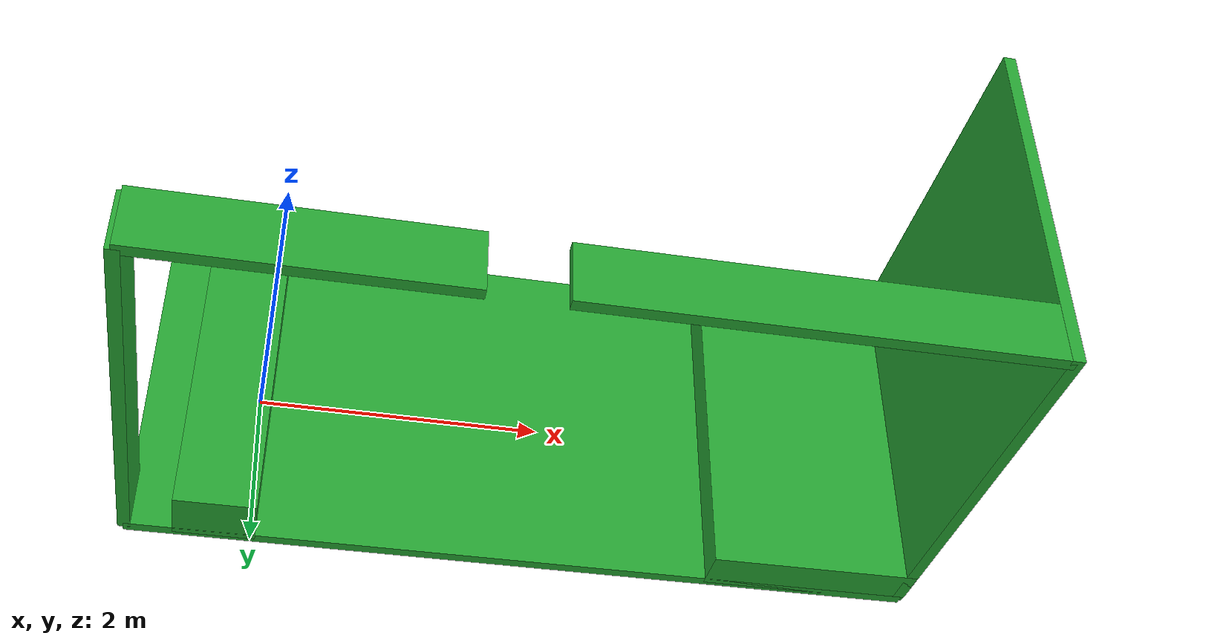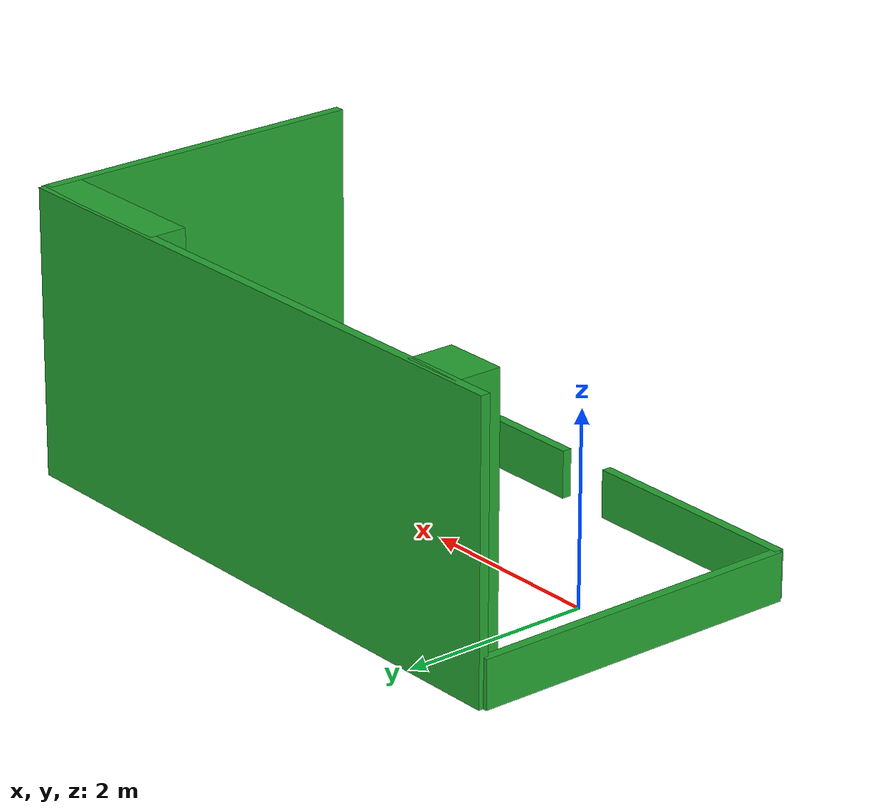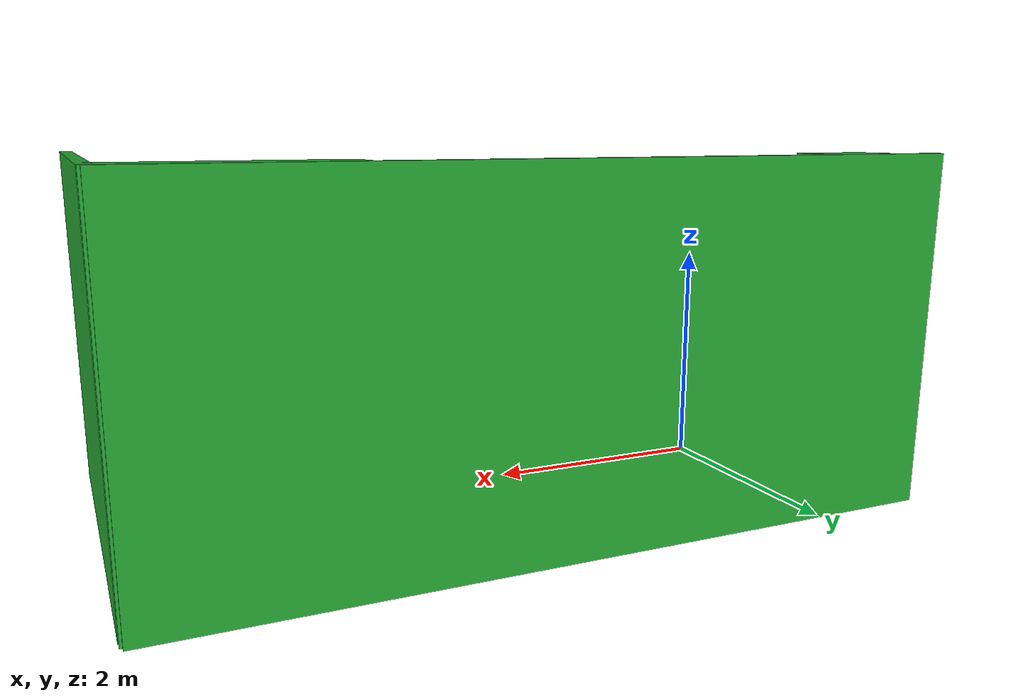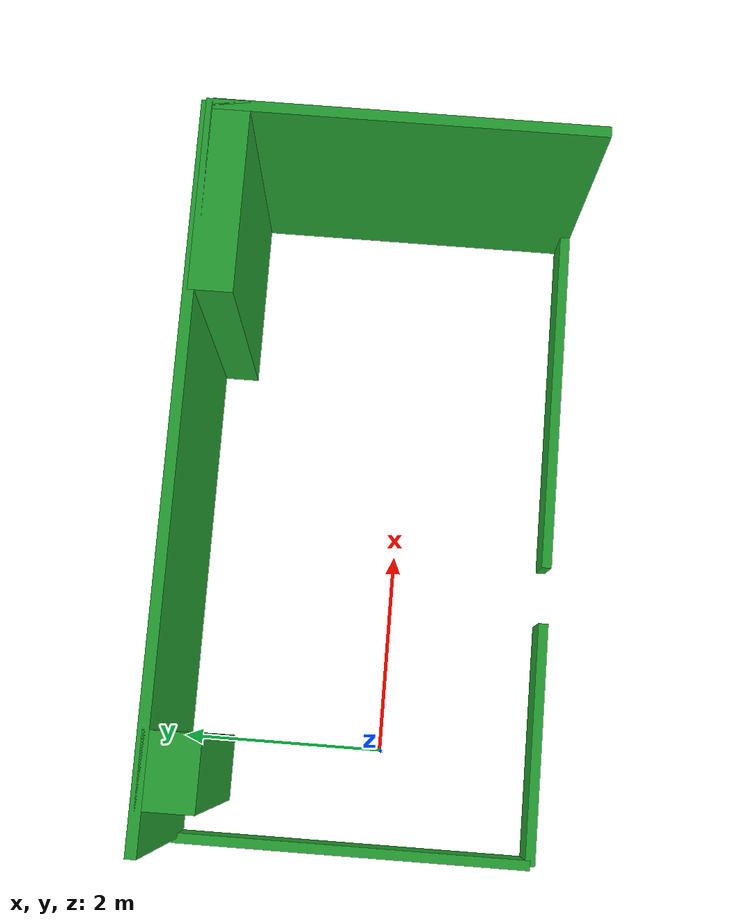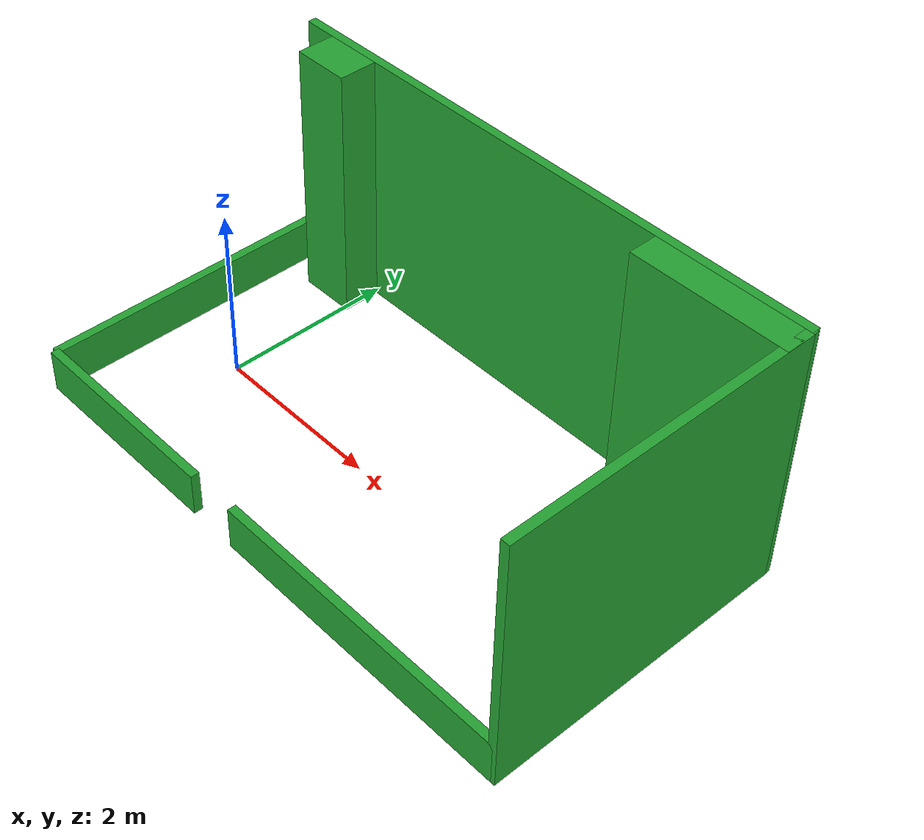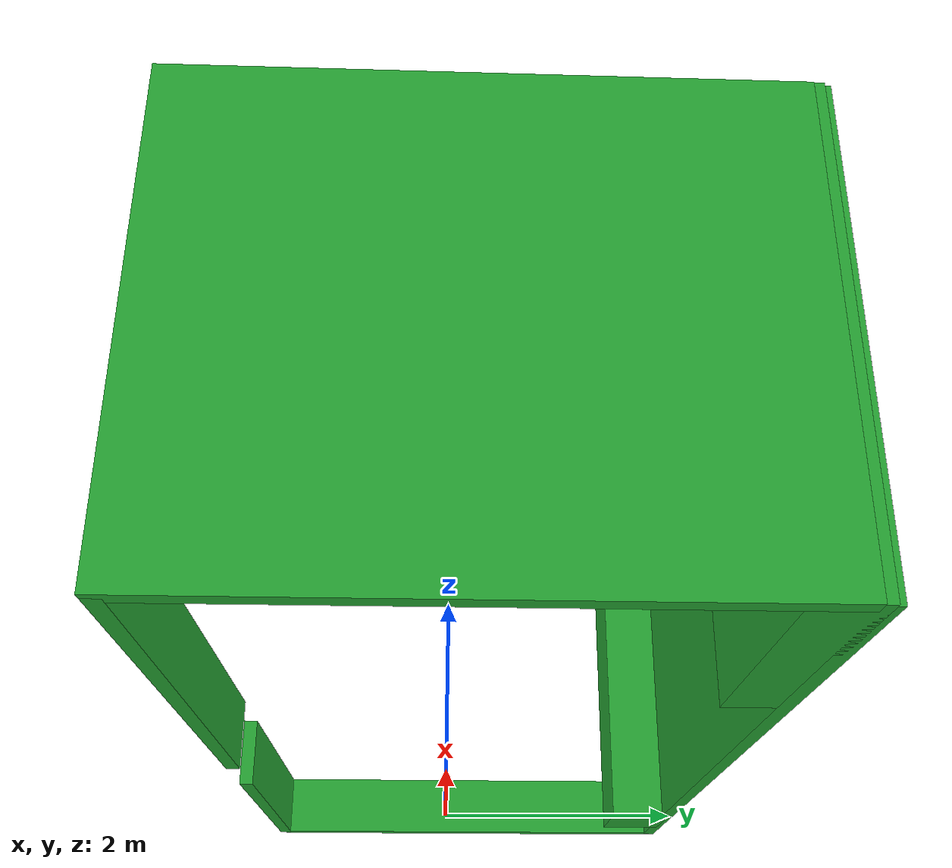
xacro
<?xml version="1.0"?>
<robot name="brics_rc_world">
  <link name="dummy_link">
    <inertial>
      <origin xyz="0 0 0" />
      <mass value="1.0" />
      <inertia  ixx="1.0" ixy="0.0"  ixz="0.0"  iyy="100.0"  iyz="0.0"  izz="1.0" />
    </inertial>
    <visual>
      <origin xyz="0 0 0"/>
      <geometry>
        <box size="0.01 0.01 0.01" />
      </geometry>
    </visual>
    <collision>
      <origin xyz="0 0 0"/>
      <geometry>
        <box size="0.01 0.01 0.01" />
      </geometry>
    </collision>
  </link>
  <link name="wall_1_model">
    <inertial>
      <origin xyz="0 0 0" />
      <mass value="10.0" />
      <inertia  ixx="1.0" ixy="0.0"  ixz="0.0"  iyy="100.0"  iyz="0.0"  izz="1.0" />
    </inertial>
    <visual>
      <origin xyz="0 0 0"/>
      <geometry>
        <box size="0.1 3.54 0.5" />
      </geometry>
    </visual>
    <collision>
      <origin xyz="0 0 0"/>
      <geometry>
        <box size="0.1 3.54 0.5" />
      </geometry>
    </collision>
  </link>
  <link name="wall_2_model">
    <inertial>
      <origin xyz="0 0 0" />
      <mass value="10.0" />
      <inertia  ixx="1.0" ixy="0.0"  ixz="0.0"  iyy="100.0"  iyz="0.0"  izz="1.0" />
    </inertial>
    <visual>
      <origin xyz="0 0 0"/>
      <geometry>
        <box size="2.40 0.1 0.5" />
      </geometry>
    </visual>
    <collision>
      <origin xyz="0 0 0"/>
      <geometry>
        <box size="2.40 0.1 0.5" />
      </geometry>
    </collision>
  </link>
  <link name="wall_3_model">
    <inertial>
      <origin xyz="0 0 0" />
      <mass value="10.0" />
      <inertia  ixx="1.0" ixy="0.0"  ixz="0.0"  iyy="100.0"  iyz="0.0"  izz="1.0" />
    </inertial>
    <visual>
      <origin xyz="0 0 0"/>
      <geometry>
        <box size="3.58 0.1 0.5" />
      </geometry>
    </visual>
    <collision>
      <origin xyz="0 0 0"/>
      <geometry>
        <box size="3.58 0.1 0.5" />
      </geometry>
    </collision>
  </link>
  <link name="wall_4_model">
    <inertial>
      <origin xyz="0 0 0" />
      <mass value="10.0" />
      <inertia  ixx="1.0" ixy="0.0"  ixz="0.0"  iyy="100.0"  iyz="0.0"  izz="1.0" />
    </inertial>
    <visual>
      <origin xyz="0 0 0"/>
      <geometry>
        <box size="0.1 3.54 3.0" />
      </geometry>
    </visual>
    <collision>
      <origin xyz="0 0 0"/>
      <geometry>
        <box size="0.1 3.54 3.0" />
      </geometry>
    </collision>
  </link>
  <link name="wall_5_model">
    <inertial>
      <origin xyz="0 0 0" />
      <mass value="10.0" />
      <inertia  ixx="1.0" ixy="0.0"  ixz="0.0"  iyy="100.0"  iyz="0.0"  izz="1.0" />
    </inertial>
    <visual>
      <origin xyz="0 0 0"/>
      <geometry>
        <box size="1.77 0.4 3.0" />
      </geometry>
    </visual>
    <collision>
      <origin xyz="0 0 0"/>
      <geometry>
        <box size="1.77 0.4 3.0" />
      </geometry>
    </collision>
  </link>
  <link name="wall_6_model">
    <inertial>
      <origin xyz="0 0 0" />
      <mass value="10.0" />
      <inertia  ixx="1.0" ixy="0.0"  ixz="0.0"  iyy="100.0"  iyz="0.0"  izz="1.0" />
    </inertial>
    <visual>
      <origin xyz="0 0 0"/>
      <geometry>
        <box size="6.57 0.1 3.0" />
      </geometry>
    </visual>
    <collision>
      <origin xyz="0 0 0"/>
      <geometry>
        <box size="6.57 0.1 3.0" />
      </geometry>
    </collision>
  </link>
  <link name="wall_7_model">
    <inertial>
      <origin xyz="0 0 0" />
      <mass value="10.0" />
      <inertia  ixx="1.0" ixy="0.0"  ixz="0.0"  iyy="100.0"  iyz="0.0"  izz="1.0" />
    </inertial>
    <visual>
      <origin xyz="0 0 0"/>
      <geometry>
        <box size="0.66 0.5 3.0" />
      </geometry>
    </visual>
    <collision>
      <origin xyz="0 0 0"/>
      <geometry>
        <box size="0.66 0.5 3.0" />
      </geometry>
    </collision>
  </link>

 <joint name="my_joint1" type="fixed">
    <origin xyz="-1.0 0.22 0.25" rpy="0 0 0"/>
    <parent link="dummy_link"/>
    <child link="wall_1_model"/>
 </joint>
 <joint name="my_joint2" type="fixed">
    <origin xyz="0.19 -1.55 0.25" rpy="0 0 0"/>
    <parent link="dummy_link"/>
    <child link="wall_2_model"/>
 </joint>
 <joint name="my_joint3" type="fixed">
    <origin xyz="3.75 -1.55 0.25" rpy="0 0 0"/>
    <parent link="dummy_link"/>
    <child link="wall_3_model"/>
 </joint>
 <joint name="my_joint4" type="fixed">
    <origin xyz="5.54 .17 1.50" rpy="0 0 0"/>
    <parent link="dummy_link"/>
    <child link="wall_4_model"/>
 </joint>
 <joint name="my_joint5" type="fixed">
    <origin xyz="4.7 1.8 1.5" rpy="0 0 0"/>
    <parent link="dummy_link"/>
    <child link="wall_5_model"/>
 </joint>
 <joint name="my_joint6" type="fixed">
    <origin xyz="2.28 1.99 1.5" rpy="0 0 0"/>
    <parent link="dummy_link"/>
    <child link="wall_6_model"/>
 </joint>
 <joint name="my_joint7" type="fixed">
    <origin xyz="-0.29 1.75 1.5" rpy="0 0 0"/>
    <parent link="dummy_link"/>
    <child link="wall_7_model"/>
 </joint>

  <gazebo reference="dummy_link">
    <material>Gazebo/Green</material>
  </gazebo>
  <gazebo reference="wall_1_model">
    <material>Gazebo/Green</material>
  </gazebo>
  <gazebo reference="wall_2_model">
    <material>Gazebo/Green</material>
  </gazebo>
  <gazebo reference="wall_3_model">
    <material>Gazebo/Green</material>
  </gazebo>
  <gazebo reference="wall_4_model">
    <material>Gazebo/Green</material>
  </gazebo>
  <gazebo reference="wall_5_model">
    <material>Gazebo/Green</material>
  </gazebo>
  <gazebo reference="wall_6_model">
    <material>Gazebo/Green</material>
  </gazebo>
  <gazebo reference="wall_7_model">
    <material>Gazebo/Green</material>
  </gazebo>
</robot>
